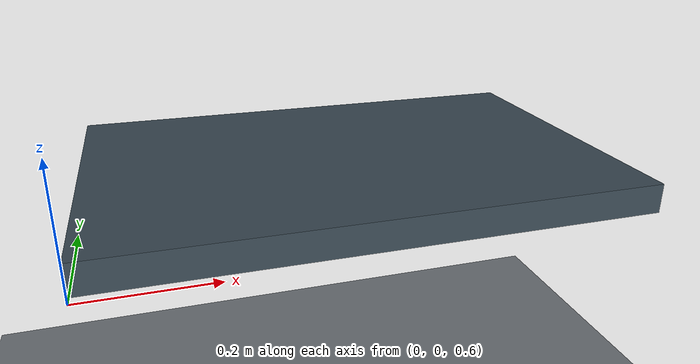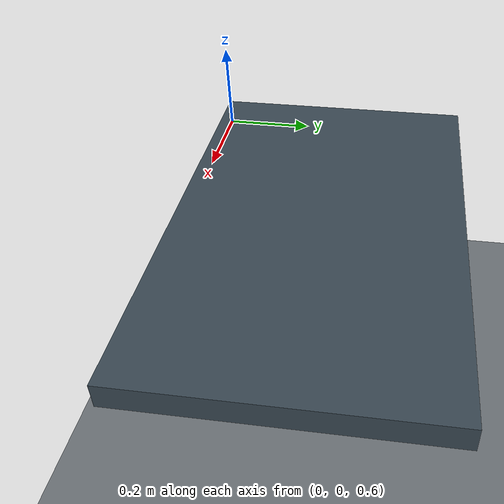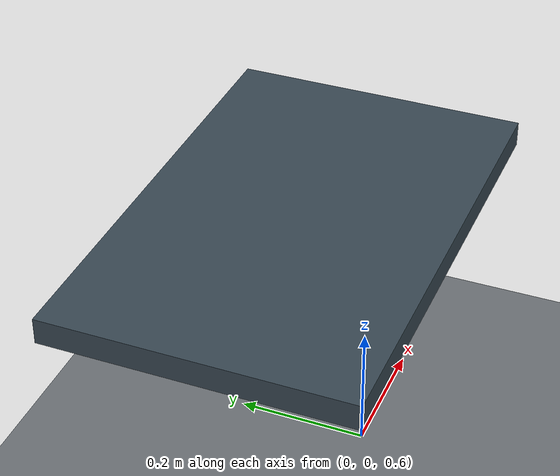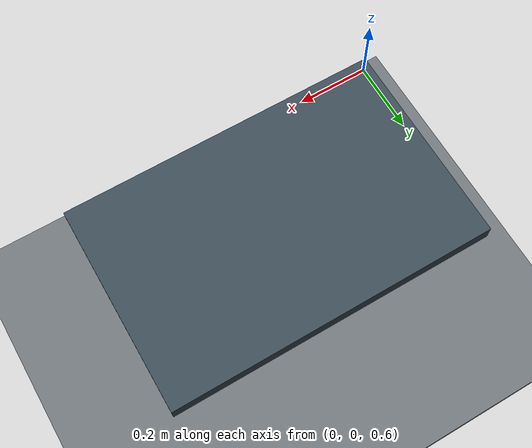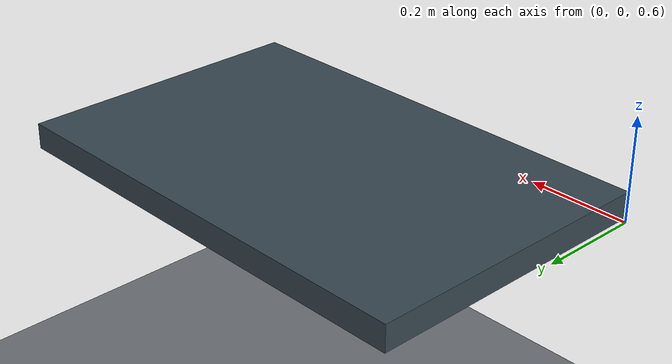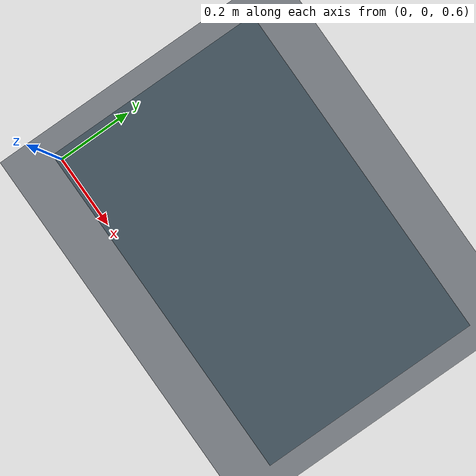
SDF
<?xml version="1.0"?>
<sdf version="1.9">
  <world name="vicoman_home">
    <physics name="default_physics" type="ignored">
      <max_step_size>0.001</max_step_size>
      <real_time_factor>1.0</real_time_factor>
    </physics>

    <scene>
      <ambient>0.55 0.55 0.55 1</ambient>
      <background>0.78 0.82 0.86 1</background>
      <grid>true</grid>
    </scene>

    <light name="sun" type="directional">
      <cast_shadows>true</cast_shadows>
      <pose>0 0 8 0 0 0</pose>
      <diffuse>0.9 0.86 0.78 1</diffuse>
      <specular>0.2 0.2 0.2 1</specular>
      <direction>-0.45 0.25 -0.85</direction>
    </light>

    <model name="floor">
      <static>true</static>
      <link name="floor_link">
        <collision name="collision">
          <geometry>
            <box>
              <size>4.0 4.0 0.04</size>
            </box>
          </geometry>
        </collision>
        <visual name="visual">
          <geometry>
            <box>
              <size>4.0 4.0 0.04</size>
            </box>
          </geometry>
          <material>
            <ambient>0.42 0.44 0.46 1</ambient>
            <diffuse>0.42 0.44 0.46 1</diffuse>
          </material>
        </visual>
      </link>
      <pose>0 0 -0.02 0 0 0</pose>
    </model>

    <model name="work_platform">
      <static>true</static>
      <link name="platform_link">
        <collision name="collision">
          <geometry>
            <box>
              <size>0.90 0.58 0.05</size>
            </box>
          </geometry>
        </collision>
        <visual name="visual">
          <geometry>
            <box>
              <size>0.90 0.58 0.05</size>
            </box>
          </geometry>
          <material>
            <ambient>0.22 0.28 0.32 1</ambient>
            <diffuse>0.22 0.28 0.32 1</diffuse>
            <specular>0.08 0.08 0.08 1</specular>
          </material>
        </visual>
      </link>
      <pose>0.45 0.29 0.635 0 0 0</pose>
    </model>
  </world>
</sdf>
